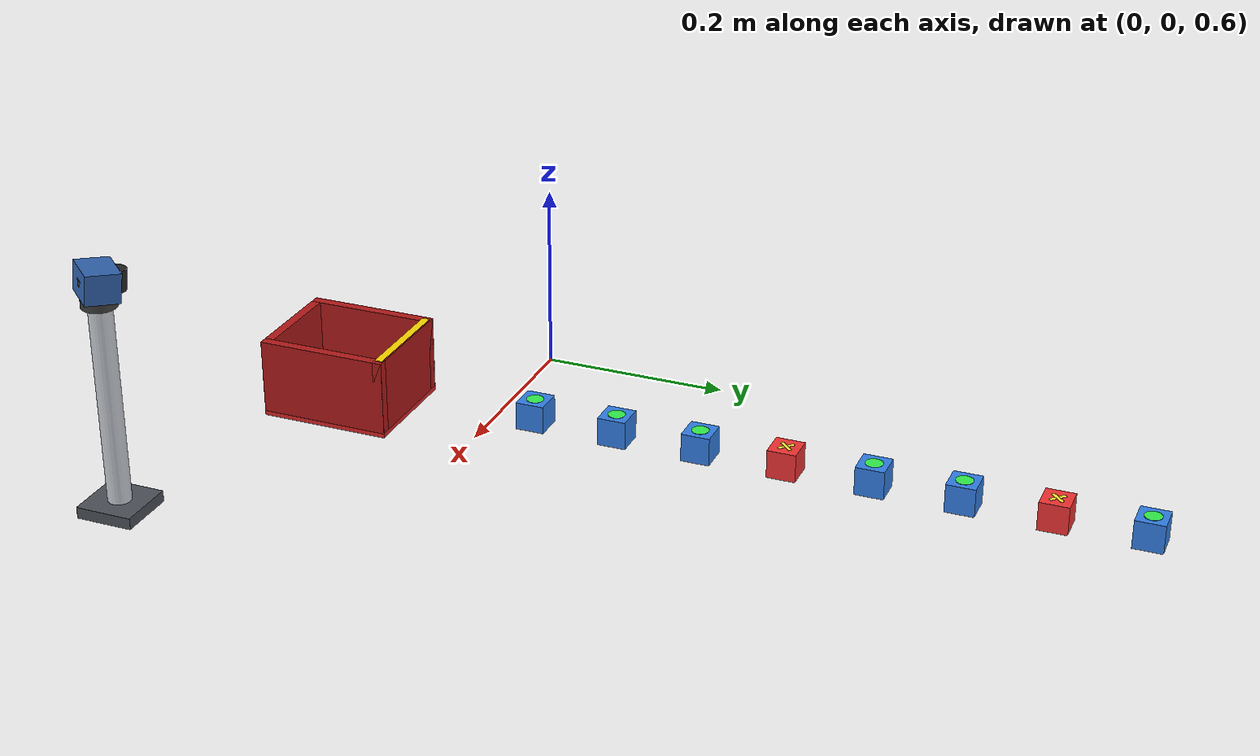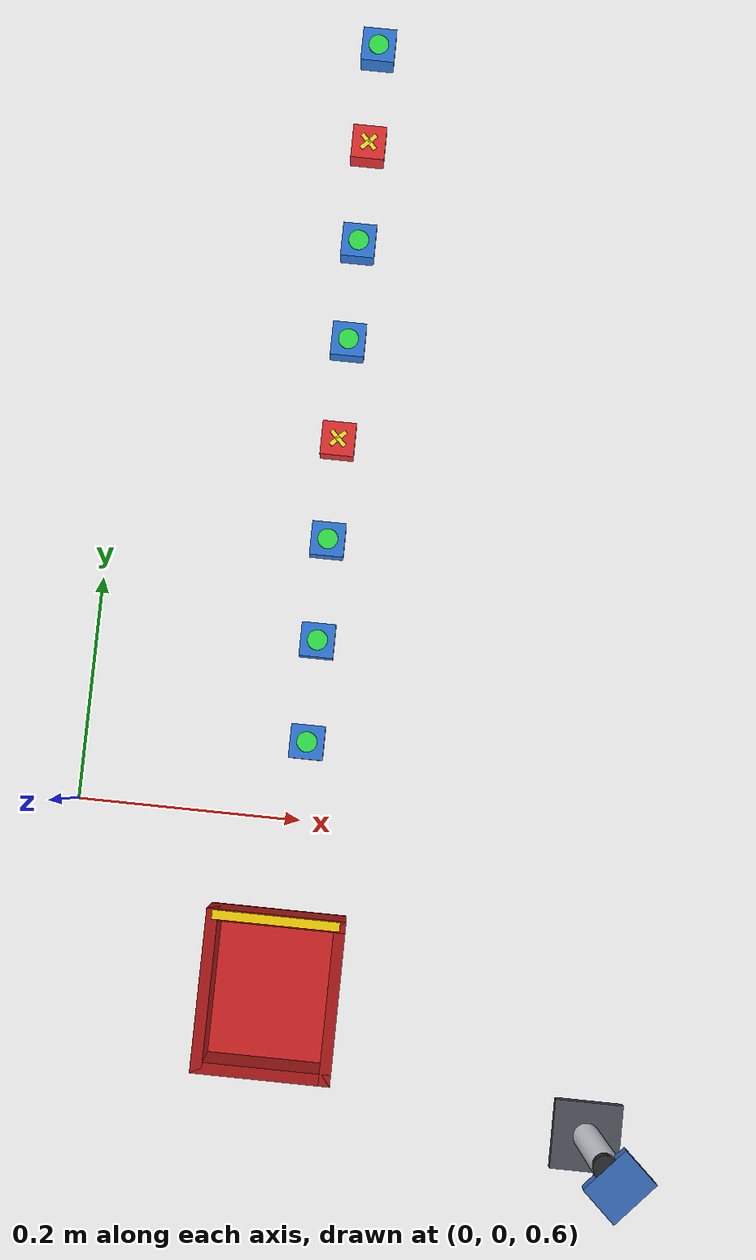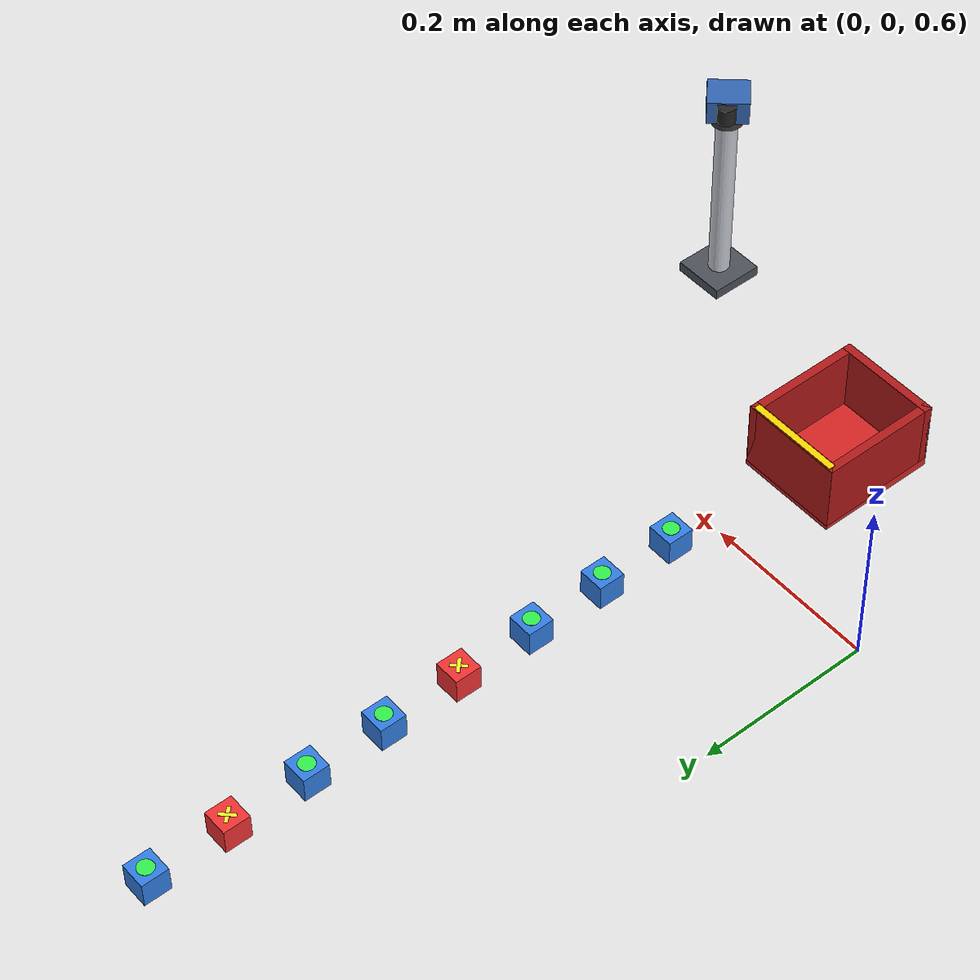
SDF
<sdf version="1.6">
 <world name="default">
  <model name="side_inspection_rig">
   <static>true</static>
   <pose>0.48 -0.25 0.608 0 0 0</pose>
   <link name="link">
    <collision name="pedestal_col">
     <pose>0 0 0.006 0 0 0</pose>
     <geometry><box><size>0.06 0.06 0.012</size></box></geometry>
    </collision>
    <visual name="pedestal_vis">
     <pose>0 0 0.006 0 0 0</pose>
     <geometry><box><size>0.06 0.06 0.012</size></box></geometry>
     <material><ambient>0.2 0.22 0.25 1</ambient><diffuse>0.3 0.32 0.35 1</diffuse></material>
    </visual>
    <collision name="post_col">
     <pose>0 0 0.125 0 0 0</pose>
     <geometry><cylinder><radius>0.012</radius><length>0.230</length></cylinder></geometry>
    </collision>
    <visual name="post_vis">
     <pose>0 0 0.125 0 0 0</pose>
     <geometry><cylinder><radius>0.012</radius><length>0.230</length></cylinder></geometry>
     <material>
      <ambient>0.65 0.68 0.72 1</ambient>
      <diffuse>0.8 0.82 0.85 1</diffuse>
      <specular>0.9 0.9 0.95 1</specular>
     </material>
    </visual>
    <visual name="knuckle_vis">
     <pose>0 0 0.235 0 0 0</pose>
     <geometry><cylinder><radius>0.018</radius><length>0.030</length></cylinder></geometry>
     <material><ambient>0.2 0.2 0.2 1</ambient><diffuse>0.25 0.25 0.25 1</diffuse></material>
    </visual>
    <visual name="side_cam_housing">
     <pose>0 0 0.245 0 0.10 2.40</pose>
     <geometry><box><size>0.035 0.045 0.030</size></box></geometry>
     <material>
      <ambient>0.15 0.30 0.55 1</ambient>
      <diffuse>0.2 0.4 0.7 1</diffuse>
      <specular>0.6 0.7 0.8 1</specular>
     </material>
    </visual>
    <visual name="side_cam_lens">
     <pose>-0.012 0.013 0.245 0 0.10 2.40</pose>
     <geometry><cylinder><radius>0.010</radius><length>0.022</length></cylinder></geometry>
     <material>
      <ambient>0.1 0.1 0.1 1</ambient>
      <diffuse>0.15 0.15 0.15 1</diffuse>
      <specular>0.8 0.8 0.8 1</specular>
     </material>
    </visual>
    <sensor name="side_camera" type="camera">
     <pose>0 0 0.245 0 0.10 2.40</pose>
     <always_on>true</always_on>
     <update_rate>30</update_rate>
     <visualize>false</visualize>
     <camera>
      <horizontal_fov>1.15</horizontal_fov>
      <image><width>1280</width><height>720</height><format>R8G8B8</format></image>
      <clip><near>0.01</near><far>10.0</far></clip>
     </camera>
     <plugin name="side_camera_driver" filename="libgazebo_ros_camera.so">
      <ros>
       <remapping>~/image_raw:=/side_camera/image_raw</remapping>
       <remapping>~/camera_info:=/side_camera/camera_info</remapping>
      </ros>
      <camera_name>side_camera</camera_name>
      <frame_name>side_camera_link</frame_name>
     </plugin>
    </sensor>
   </link>
  </model>
  <model name="reject_bin">
   <static>true</static>
   <pose>0.190 -0.150 0.608 0 0 0</pose>
   <link name="bin_link">
    <collision name="bottom_col">
     <pose>0 0 0.005 0 0 0</pose>
     <geometry><box><size>0.12 0.14 0.010</size></box></geometry>
     <surface>
      <friction><ode><mu>1.2</mu><mu2>1.2</mu2></ode></friction>
      <contact>
       <ode><kp>500000.0</kp><kd>500.0</kd><max_vel>0.005</max_vel><min_depth>0.001</min_depth></ode>
      </contact>
      <bounce><restitution_coefficient>0.0</restitution_coefficient><threshold>1000000.0</threshold></bounce>
     </surface>
    </collision>
    <visual name="bottom_vis">
     <pose>0 0 0.005 0 0 0</pose>
     <geometry><box><size>0.12 0.14 0.010</size></box></geometry>
     <material><ambient>0.7 0.1 0.1 1</ambient><diffuse>0.85 0.15 0.15 1</diffuse></material>
    </visual>
    <collision name="n_wall_col">
     <pose>0 0.065 0.045 0 0 0</pose>
     <geometry><box><size>0.12 0.010 0.080</size></box></geometry>
     <surface>
      <friction><ode><mu>0.8</mu><mu2>0.8</mu2></ode></friction>
      <bounce><restitution_coefficient>0.0</restitution_coefficient><threshold>1000000.0</threshold></bounce>
     </surface>
    </collision>
    <visual name="n_wall_vis">
     <pose>0 0.065 0.045 0 0 0</pose>
     <geometry><box><size>0.12 0.010 0.080</size></box></geometry>
     <material><ambient>0.7 0.1 0.1 1</ambient></material>
    </visual>
    <collision name="s_wall_col">
     <pose>0 -0.065 0.045 0 0 0</pose>
     <geometry><box><size>0.12 0.010 0.080</size></box></geometry>
     <surface>
      <friction><ode><mu>0.8</mu><mu2>0.8</mu2></ode></friction>
      <bounce><restitution_coefficient>0.0</restitution_coefficient><threshold>1000000.0</threshold></bounce>
     </surface>
    </collision>
    <visual name="s_wall_vis">
     <pose>0 -0.065 0.045 0 0 0</pose>
     <geometry><box><size>0.12 0.010 0.080</size></box></geometry>
     <material><ambient>0.7 0.1 0.1 1</ambient></material>
    </visual>
    <collision name="e_wall_col">
     <pose>0.055 0 0.045 0 0 0</pose>
     <geometry><box><size>0.010 0.14 0.080</size></box></geometry>
     <surface>
      <friction><ode><mu>0.8</mu><mu2>0.8</mu2></ode></friction>
      <bounce><restitution_coefficient>0.0</restitution_coefficient><threshold>1000000.0</threshold></bounce>
     </surface>
    </collision>
    <visual name="e_wall_vis">
     <pose>0.055 0 0.045 0 0 0</pose>
     <geometry><box><size>0.010 0.14 0.080</size></box></geometry>
     <material><ambient>0.7 0.1 0.1 1</ambient></material>
    </visual>
    <collision name="w_wall_col">
     <pose>-0.055 0 0.045 0 0 0</pose>
     <geometry><box><size>0.010 0.14 0.080</size></box></geometry>
     <surface>
      <friction><ode><mu>0.8</mu><mu2>0.8</mu2></ode></friction>
      <bounce><restitution_coefficient>0.0</restitution_coefficient><threshold>1000000.0</threshold></bounce>
     </surface>
    </collision>
    <visual name="w_wall_vis">
     <pose>-0.055 0 0.045 0 0 0</pose>
     <geometry><box><size>0.010 0.14 0.080</size></box></geometry>
     <material><ambient>0.7 0.1 0.1 1</ambient></material>
    </visual>
    <visual name="reject_rim_stripe">
     <pose>0 0.065 0.085 0 0 0</pose>
     <geometry><box><size>0.11 0.008 0.002</size></box></geometry>
     <material><ambient>0.9 0.8 0.1 1</ambient><diffuse>1.0 0.85 0.0 1</diffuse></material>
    </visual>
   </link>
  </model>
  <include>
   <uri>model://workpiece_good</uri>
   <name>workpiece_01</name>
   <pose>0.20 0.070 0.644 0 0 0</pose>
  </include>
  <include>
   <uri>model://workpiece_good</uri>
   <name>workpiece_02</name>
   <pose>0.20 0.160 0.644 0 0 0</pose>
  </include>
  <include>
   <uri>model://workpiece_good</uri>
   <name>workpiece_03</name>
   <pose>0.20 0.250 0.644 0 0 0</pose>
  </include>
  <include>
   <uri>model://workpiece_defect</uri>
   <name>workpiece_04</name>
   <pose>0.20 0.340 0.644 0 0 0</pose>
  </include>
  <include>
   <uri>model://workpiece_good</uri>
   <name>workpiece_05</name>
   <pose>0.20 0.430 0.644 0 0 0</pose>
  </include>
  <include>
   <uri>model://workpiece_good</uri>
   <name>workpiece_06</name>
   <pose>0.20 0.520 0.644 0 0 0</pose>
  </include>
  <include>
   <uri>model://workpiece_defect</uri>
   <name>workpiece_07</name>
   <pose>0.20 0.610 0.644 0 0 0</pose>
  </include>
  <include>
   <uri>model://workpiece_good</uri>
   <name>workpiece_08</name>
   <pose>0.20 0.700 0.644 0 0 0</pose>
  </include>
 </world>
</sdf>
